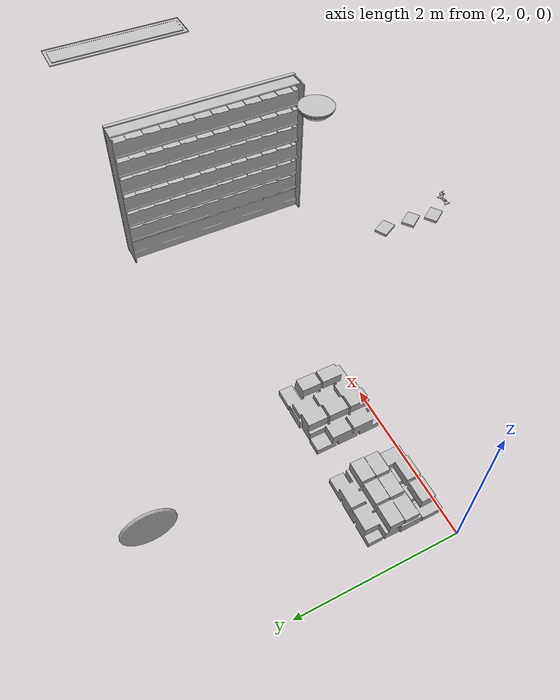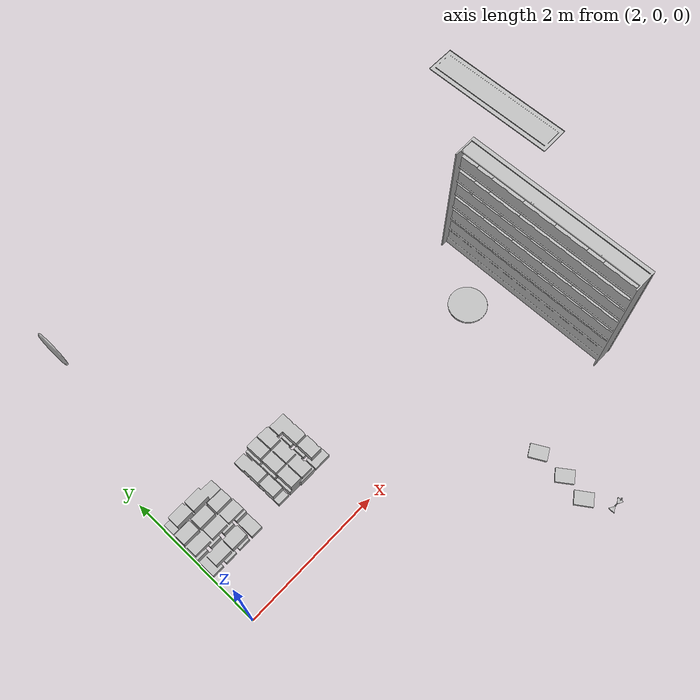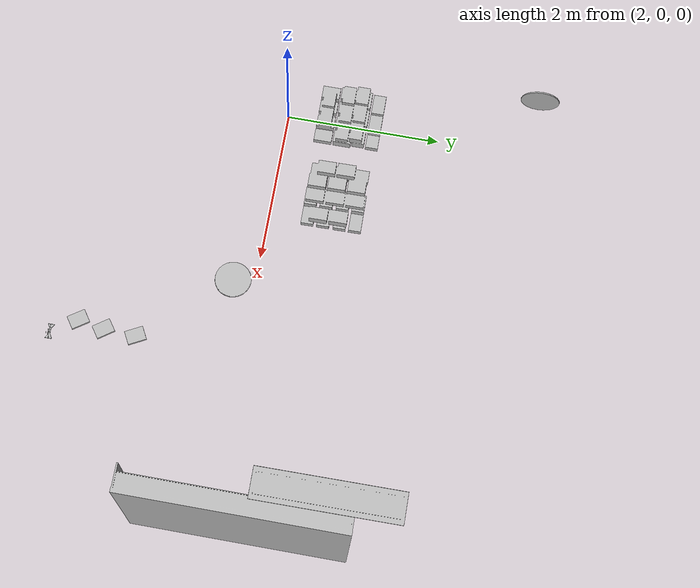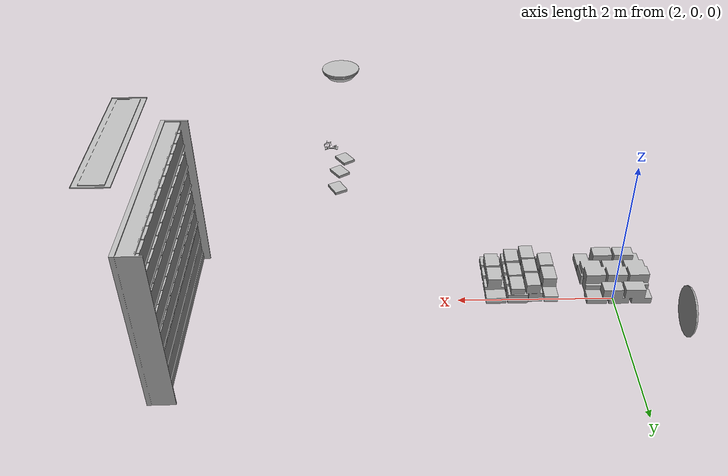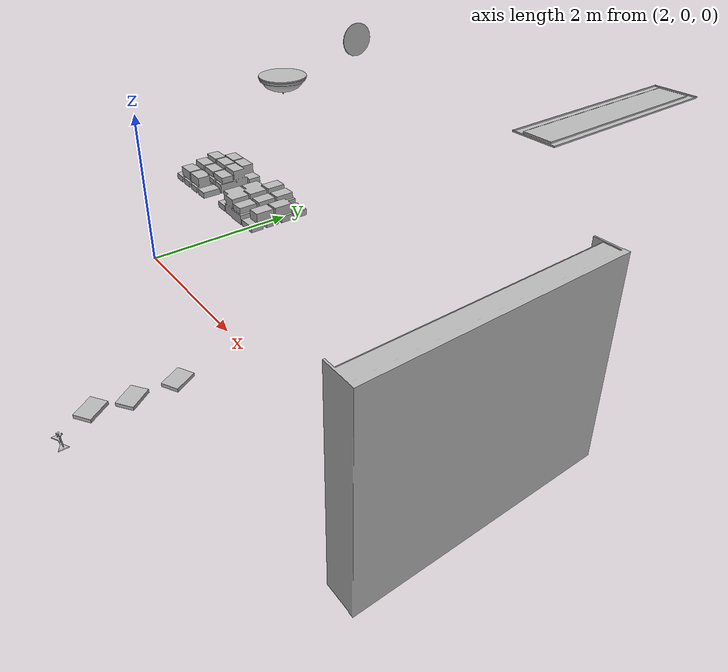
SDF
<sdf version="1.7">
 <world name="default">
  <model name="AirConditionerC_01_001">
   <frame name="aws_robomaker_retail_AirConditionerC_01::__model__" attached_to="aws_robomaker_retail_AirConditionerC_01::link">
    <pose relative_to="__model__">0 0 0 0 -0 0</pose>
   </frame>
   <link name="aws_robomaker_retail_AirConditionerC_01::link">
    <inertial><mass>50</mass></inertial>
    <collision name="collision">
     <geometry>
      <mesh>
       <uri>model://aws_robomaker_retail_AirConditionerC_01/meshes/aws_AirConditionerC_01_collision.DAE</uri>
       <scale>1 1 1</scale>
      </mesh>
     </geometry>
    </collision>
    <visual name="visual">
     <geometry>
      <mesh>
       <uri>model://aws_robomaker_retail_AirConditionerC_01/meshes/aws_AirConditionerC_01_visual.DAE</uri>
      </mesh>
     </geometry>
    </visual>
    <pose relative_to="aws_robomaker_retail_AirConditionerC_01::__model__">0 0 0 0 -0 0</pose>
   </link>
   <static>1</static>
   <pose>7.4582 1.42245 3.29094 0 0 -1.56422</pose>
  </model>
  <model name="Bicycle_01_001">
   <frame name="aws_robomaker_retail_Bicycle_01::__model__" attached_to="aws_robomaker_retail_Bicycle_01::link">
    <pose relative_to="__model__">0 0 0 0 -0 0</pose>
   </frame>
   <link name="aws_robomaker_retail_Bicycle_01::link">
    <inertial>
     <mass>0.04</mass>
     <inertia><ixx>0.1</ixx><ixy>0</ixy><ixz>0</ixz><iyy>0.1</iyy><iyz>0</iyz><izz>0.01</izz></inertia>
    </inertial>
    <collision name="collision">
     <geometry>
      <mesh>
       <uri>model://aws_robomaker_retail_Bicycle_01/meshes/aws_Bicycle_01_collision.DAE</uri>
       <scale>1 1 1</scale>
      </mesh>
     </geometry>
    </collision>
    <visual name="visual">
     <geometry>
      <mesh><uri>model://aws_robomaker_retail_Bicycle_01/meshes/aws_Bicycle_01_visual.DAE</uri></mesh>
     </geometry>
    </visual>
    <pose relative_to="aws_robomaker_retail_Bicycle_01::__model__">0 0 0 0 -0 0</pose>
   </link>
   <static>1</static>
   <pose>5.68125 -2.24245 0.931246 2e-06 -2.4e-05 -0</pose>
  </model>
  <model name="BookE_01_001">
   <frame name="aws_robomaker_retail_BookE_01::__model__" attached_to="aws_robomaker_retail_BookE_01::link">
    <pose relative_to="__model__">0 0 0 0 -0 0</pose>
   </frame>
   <link name="aws_robomaker_retail_BookE_01::link">
    <inertial>
     <mass>1</mass>
     <inertia><ixy>0</ixy><ixz>0</ixz><iyz>0</iyz><ixx>0.0666</ixx><iyy>0.0346</iyy><izz>0.0986</izz></inertia>
    </inertial>
    <collision name="collision">
     <geometry>
      <mesh>
       <uri>model://aws_robomaker_retail_BookE_01/meshes/aws_BookE_01_collision.DAE</uri>
       <scale>1 1 1</scale>
      </mesh>
     </geometry>
    </collision>
    <visual name="visual">
     <geometry>
      <mesh><uri>model://aws_robomaker_retail_BookE_01/meshes/aws_BookE_01_visual.DAE</uri></mesh>
     </geometry>
    </visual>
    <pose relative_to="aws_robomaker_retail_BookE_01::__model__">0 0 0 0 -0 0</pose>
   </link>
   <static>1</static>
   <pose>5.47653 -1.93253 0.948933 4e-06 1e-06 -2.54352</pose>
  </model>
  <model name="BookE_01_003">
   <frame name="aws_robomaker_retail_BookE_01::__model__" attached_to="aws_robomaker_retail_BookE_01::link">
    <pose relative_to="__model__">0 0 0 0 -0 0</pose>
   </frame>
   <link name="aws_robomaker_retail_BookE_01::link">
    <inertial>
     <mass>1</mass>
     <inertia><ixy>0</ixy><ixz>0</ixz><iyz>0</iyz><ixx>0.0666</ixx><iyy>0.0346</iyy><izz>0.0986</izz></inertia>
    </inertial>
    <collision name="collision">
     <geometry>
      <mesh>
       <uri>model://aws_robomaker_retail_BookE_01/meshes/aws_BookE_01_collision.DAE</uri>
       <scale>1 1 1</scale>
      </mesh>
     </geometry>
    </collision>
    <visual name="visual">
     <geometry>
      <mesh><uri>model://aws_robomaker_retail_BookE_01/meshes/aws_BookE_01_visual.DAE</uri></mesh>
     </geometry>
    </visual>
    <pose relative_to="aws_robomaker_retail_BookE_01::__model__">0 0 0 0 -0 0</pose>
   </link>
   <static>1</static>
   <pose>5.55255 -1.21421 0.948933 4e-06 -1e-06 -2.65431</pose>
  </model>
  <model name="BookE_01_005">
   <frame name="aws_robomaker_retail_BookE_01::__model__" attached_to="aws_robomaker_retail_BookE_01::link">
    <pose relative_to="__model__">0 0 0 0 -0 0</pose>
   </frame>
   <link name="aws_robomaker_retail_BookE_01::link">
    <inertial>
     <mass>1</mass>
     <inertia><ixy>0</ixy><ixz>0</ixz><iyz>0</iyz><ixx>0.0666</ixx><iyy>0.0346</iyy><izz>0.0986</izz></inertia>
    </inertial>
    <collision name="collision">
     <geometry>
      <mesh>
       <uri>model://aws_robomaker_retail_BookE_01/meshes/aws_BookE_01_collision.DAE</uri>
       <scale>1 1 1</scale>
      </mesh>
     </geometry>
    </collision>
    <visual name="visual">
     <geometry>
      <mesh><uri>model://aws_robomaker_retail_BookE_01/meshes/aws_BookE_01_visual.DAE</uri></mesh>
     </geometry>
    </visual>
    <pose relative_to="aws_robomaker_retail_BookE_01::__model__">0 0 0 0 -0 0</pose>
   </link>
   <static>1</static>
   <pose>5.53815 -1.61032 0.948933 0 0 -2.5269</pose>
  </model>
  <model name="BookD_01_004">
   <frame name="aws_robomaker_retail_BookD_01::__model__" attached_to="aws_robomaker_retail_BookD_01::link">
    <pose relative_to="__model__">0 0 0 0 -0 0</pose>
   </frame>
   <link name="aws_robomaker_retail_BookD_01::link">
    <inertial><mass>0.5</mass></inertial>
    <collision name="collision">
     <geometry>
      <mesh>
       <uri>model://aws_robomaker_retail_BookD_01/meshes/aws_BookD_01_collision.DAE</uri>
       <scale>1 1 1</scale>
      </mesh>
     </geometry>
    </collision>
    <visual name="visual">
     <geometry>
      <mesh><uri>model://aws_robomaker_retail_BookD_01/meshes/aws_BookD_01_visual.DAE</uri></mesh>
     </geometry>
    </visual>
    <pose relative_to="aws_robomaker_retail_BookD_01::__model__">0 0 0 0 -0 0</pose>
   </link>
   <static>1</static>
   <pose>2.35863 0.854853 1.03815 6e-06 -0 0.001712</pose>
  </model>
  <model name="BookF_01_005">
   <frame name="aws_robomaker_retail_BookF_01::__model__" attached_to="aws_robomaker_retail_BookF_01::link">
    <pose relative_to="__model__">0 0 0 0 -0 0</pose>
   </frame>
   <link name="aws_robomaker_retail_BookF_01::link">
    <inertial>
     <mass>10</mass>
     <inertia>
      <ixx>0.583817</ixx>
      <ixy>0</ixy>
      <ixz>0</ixz>
      <iyy>0.502925</iyy>
      <iyz>0</iyz>
      <izz>0.99304</izz>
     </inertia>
    </inertial>
    <collision name="collision">
     <geometry>
      <mesh>
       <uri>model://aws_robomaker_retail_BookF_01/meshes/aws_BookF_01_collision.DAE</uri>
       <scale>1 1 1</scale>
      </mesh>
     </geometry>
    </collision>
    <visual name="visual">
     <geometry>
      <mesh><uri>model://aws_robomaker_retail_BookF_01/meshes/aws_BookF_01_visual.DAE</uri></mesh>
     </geometry>
    </visual>
    <pose relative_to="aws_robomaker_retail_BookF_01::__model__">0 0 0 0 -0 0</pose>
   </link>
   <static>1</static>
   <pose>3.43061 0.856469 1.03816 8e-06 -0 1.58038</pose>
  </model>
  <model name="BookshelfB_01_008">
   <frame name="aws_robomaker_retail_BookshelfB_01::__model__" attached_to="aws_robomaker_retail_BookshelfB_01::link">
    <pose relative_to="__model__">0 0 0 0 -0 0</pose>
   </frame>
   <link name="aws_robomaker_retail_BookshelfB_01::link">
    <inertial>
     <mass>50</mass>
     <inertia><ixx>19.8742</ixx><ixy>0</ixy><ixz>0</ixz><iyy>49.1263</iyy><iyz>0</iyz><izz>30.2231</izz></inertia>
    </inertial>
    <collision name="collision">
     <geometry>
      <mesh>
       <uri>model://aws_robomaker_retail_BookshelfB_01/meshes/aws_BookshelfB_01_collision.DAE</uri>
       <scale>1 1 1</scale>
      </mesh>
     </geometry>
    </collision>
    <visual name="visual">
     <geometry>
      <mesh><uri>model://aws_robomaker_retail_BookshelfB_01/meshes/aws_BookshelfB_01_visual.DAE</uri></mesh>
     </geometry>
    </visual>
    <pose relative_to="aws_robomaker_retail_BookshelfB_01::__model__">0 0 0 0 -0 0</pose>
   </link>
   <static>1</static>
   <pose>7.47833 0.402539 0.017181 3e-06 -0.000156 1.5708</pose>
  </model>
  <model name="Horologe_01_001">
   <frame name="aws_robomaker_retail_Horologe_01::__model__" attached_to="aws_robomaker_retail_Horologe_01::link">
    <pose relative_to="__model__">0 0 0 0 -0 0</pose>
   </frame>
   <link name="aws_robomaker_retail_Horologe_01::link">
    <inertial><mass>1</mass></inertial>
    <collision name="collision">
     <geometry>
      <mesh>
       <uri>model://aws_robomaker_retail_Horologe_01/meshes/aws_Horologe_01_collision.DAE</uri>
       <scale>1 1 1</scale>
      </mesh>
     </geometry>
    </collision>
    <visual name="visual">
     <geometry>
      <mesh><uri>model://aws_robomaker_retail_Horologe_01/meshes/aws_Horologe_01_visual.DAE</uri></mesh>
     </geometry>
    </visual>
    <pose relative_to="aws_robomaker_retail_Horologe_01::__model__">0 0 0 0 -0 0</pose>
   </link>
   <static>1</static>
   <pose>2.40512 3.02571 2.52519 0 0 -1.56558</pose>
  </model>
  <model name="LightA_01_003">
   <frame name="aws_robomaker_retail_LightA_01::__model__" attached_to="aws_robomaker_retail_LightA_01::link">
    <pose relative_to="__model__">0 0 0 0 -0 0</pose>
   </frame>
   <link name="aws_robomaker_retail_LightA_01::link">
    <inertial><mass>1</mass></inertial>
    <collision name="collision">
     <geometry>
      <mesh>
       <uri>model://aws_robomaker_retail_LightA_01/meshes/aws_LightA_01_collision.DAE</uri>
       <scale>1 1 1</scale>
      </mesh>
     </geometry>
    </collision>
    <visual name="visual">
     <geometry>
      <mesh><uri>model://aws_robomaker_retail_LightA_01/meshes/aws_LightA_01_visual.DAE</uri></mesh>
     </geometry>
    </visual>
    <pose relative_to="aws_robomaker_retail_LightA_01::__model__">0 0 0 0 -0 0</pose>
   </link>
   <static>1</static>
   <pose>5.38399 0.04192 3.15033 0 -0 0</pose>
  </model>
 </world>
</sdf>
